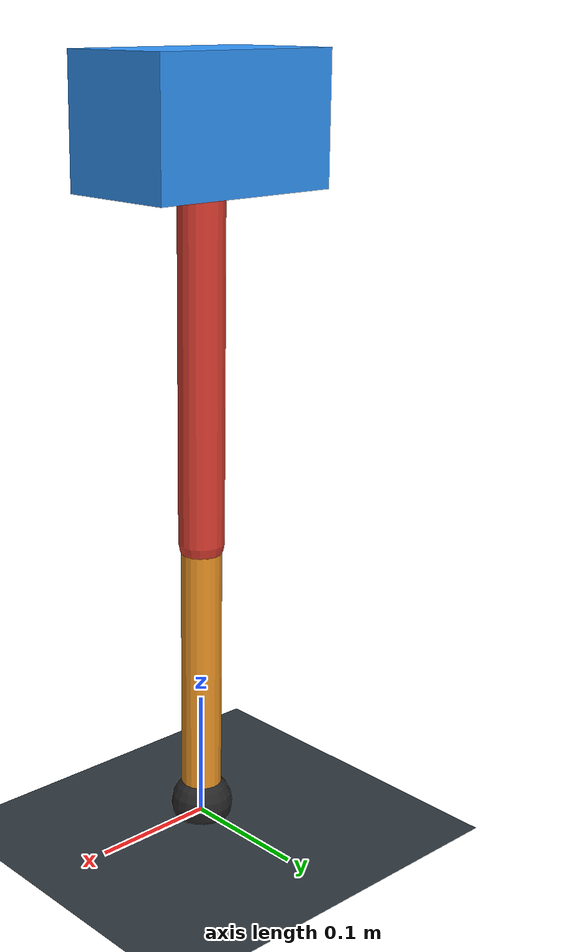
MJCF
<mujoco model="single_axis_two_bar">
  <compiler angle="radian" inertiafromgeom="true"/>
  <option timestep="0.001" integrator="implicitfast" gravity="0 0 -9.81"/>
  <default>
    <joint damping="0.08"/>
    <geom friction="1.2 0.01 0.0001" condim="3"/>
  </default>
  <worldbody>
    <geom name="floor" type="plane" size="5 5 0.1" rgba="0.18 0.22 0.25 1"/>
    <body name="carriage" pos="0 0 0.5511680299175084">
      <joint name="pole_slide" type="slide" axis="0 0 1"/>
      <geom name="payload" type="box" size="0.08 0.05 0.05" mass="4.010979935126171" rgba="0.2 0.6 1 1"/>
      <body name="thigh" pos="0 0 0">
        <joint name="hip" type="hinge" axis="0 1 0"/>
        <geom name="thigh_link" type="capsule" fromto="0 0 0 0 0 -0.3194229263637901" size="0.018" mass="0.2275930558357779" rgba="0.9 0.25 0.2 1"/>
        <body name="shank" pos="0 0 -0.3194229263637901">
          <joint name="knee" type="hinge" axis="0 1 0"/>
          <geom name="shank_link" type="capsule" fromto="0 0 0 0 0 -0.2230183415924041" size="0.016" mass="0.15890351531196947" rgba="0.95 0.6 0.15 1"/>
          <geom name="foot" type="sphere" pos="0 0 -0.2230183415924041" size="0.025" mass="0.03" rgba="0.15 0.15 0.15 1"/>
          <site name="toe" pos="0 0 -0.2230183415924041" size="0.008"/>
        </body>
      </body>
    </body>
  </worldbody>
  <actuator>
    <motor name="hip_motor" joint="hip" ctrlrange="-65.86512864382166 65.86512864382166"/>
    <motor name="knee_motor" joint="knee" ctrlrange="-72.36044274506231 72.36044274506231"/>
  </actuator>
</mujoco>
